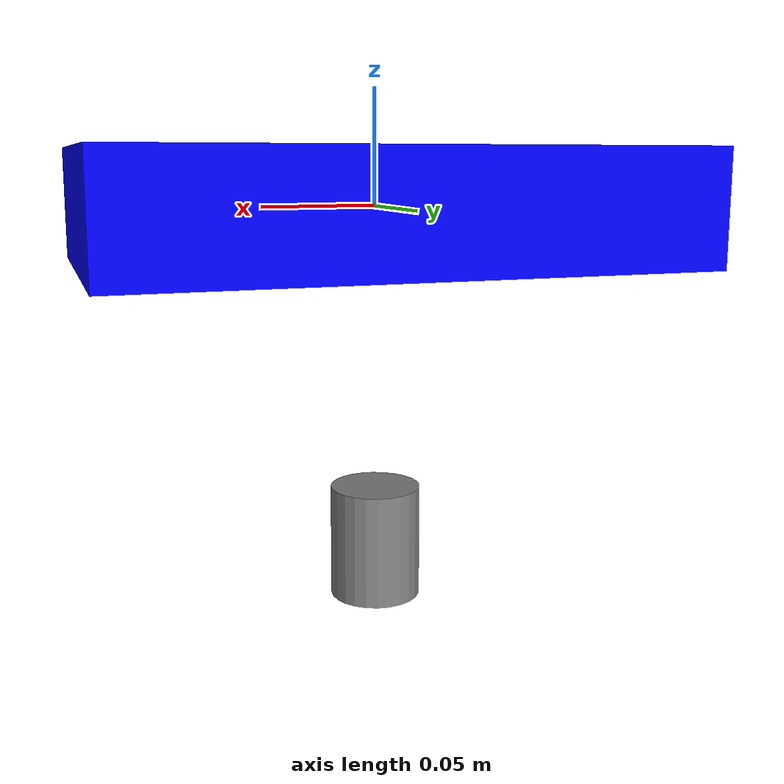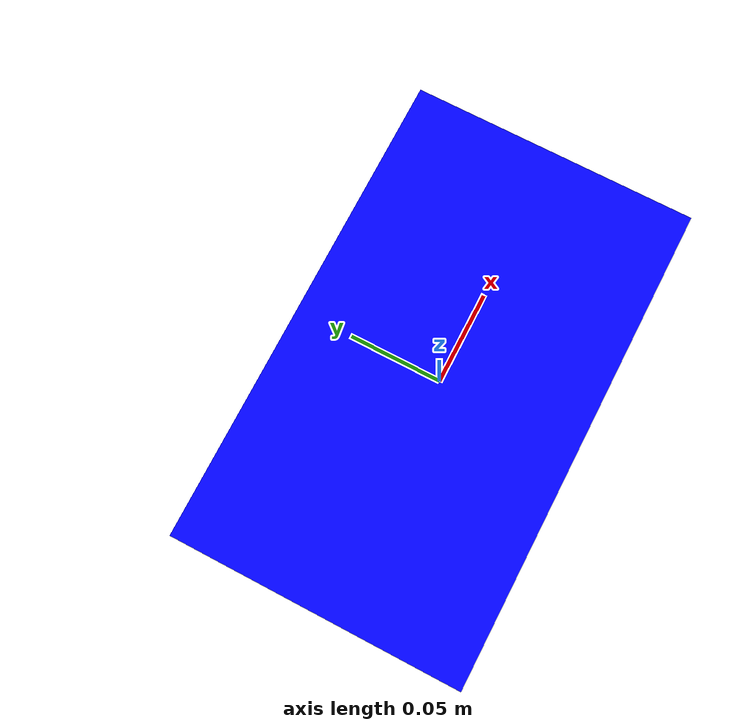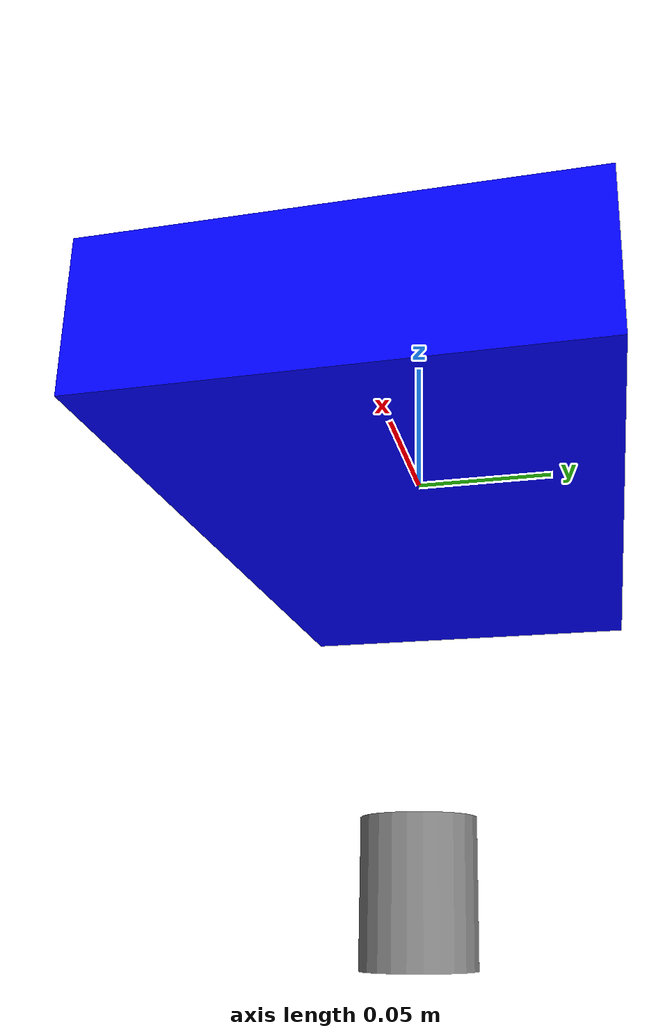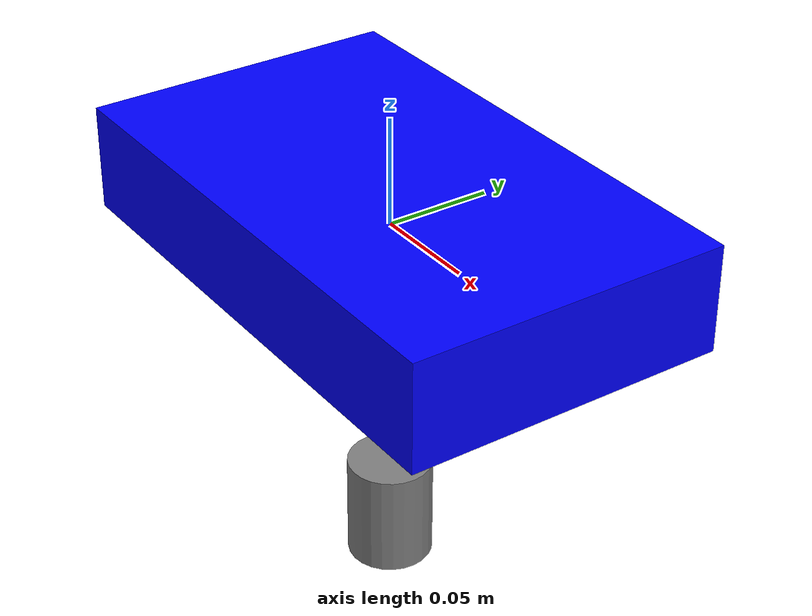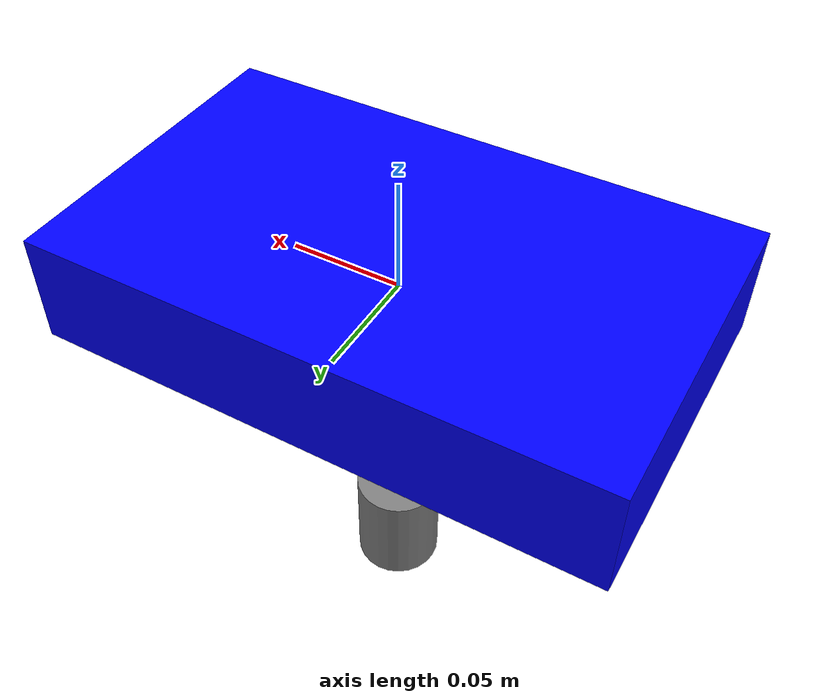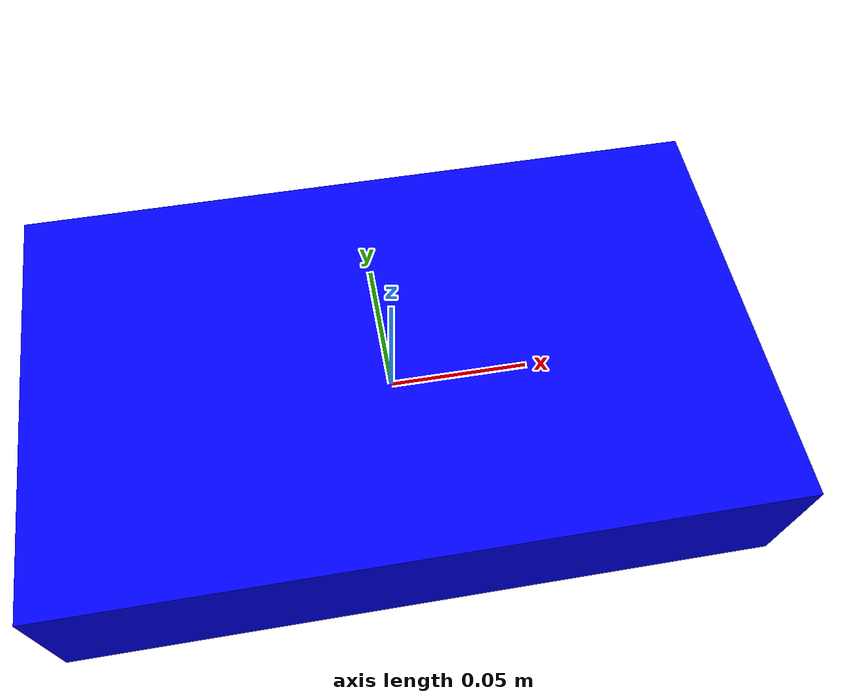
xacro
<?xml version="1.0"?>
<robot name="simple_robot" xmlns:xacro="http://ros.org/wiki/xacro">

  <!-- プロパティ定義 -->
  <xacro:property name="base_size" value="0.25 0.15 0.05"/>
  <xacro:property name="wheel_radius" value="0.05"/>
  <xacro:property name="wheel_width"  value="0.025"/>
  <xacro:property name="lidar_offset_z" value="-0.15"/>
  <xacro:property name="lidar_radius" value="0.02"/>
  <xacro:property name="lidar_length" value="0.05"/>

  <!-- ベースリンク -->
  <link name="base_link">
    <inertial>
      <mass value="1.0"/>
      <inertia ixx="0.0835" ixy="0" ixz="0" iyy="0.1209" iyz="0" izz="0.1209"/>
    </inertial>
    <visual>
      <geometry>
        <box size="${base_size}"/>
      </geometry>
      <material name="blue">
        <color rgba="0 0 1 1"/>
      </material>
    </visual>
    <collision>
      <geometry>
        <box size="${base_size}"/>
      </geometry>
    </collision>
  </link>

  <!-- 2Dライダーリンク -->
  <link name="lidar_link">
    <inertial>
      <mass value="0.1"/>
      <inertia ixx="0.0001" ixy="0" ixz="0" iyy="0.0001" iyz="0" izz="0.0001"/>
    </inertial>
    <visual>
      <geometry>
        <!-- シリンダーで簡易表示 -->
        <cylinder radius="${lidar_radius}" length="${lidar_length}"/>
      </geometry>
      <material name="grey">
        <color rgba="0.5 0.5 0.5 1"/>
      </material>
    </visual>
    <collision>
      <geometry>
        <cylinder radius="${lidar_radius}" length="${lidar_length}"/>
      </geometry>
    </collision>
    <!-- Gazebo用センサプラグイン -->
    <gazebo>
      <plugin name="gazebo_ros_laser" filename="libgazebo_ros_laser.so">
        <topicName>/scan</topicName>
        <frameName>lidar_link</frameName>
        <updateRate>20</updateRate>
        <minRange>0.0</minRange>
        <maxRange>5.0</maxRange>
        <resolution>0.01</resolution>
      </plugin>
    </gazebo>
  </link>

  <!-- 固定ジョイント： base_link と lidar_link -->
  <joint name="lidar_joint" type="fixed">
    <parent link="base_link"/>
    <child link="lidar_link"/>
    <origin xyz="0 0 ${lidar_offset_z}" rpy="0 0 0"/>
  </joint>

  <!-- その他のリンク（車輪、キャスターなど）の定義もここに追加可能 -->

</robot>
